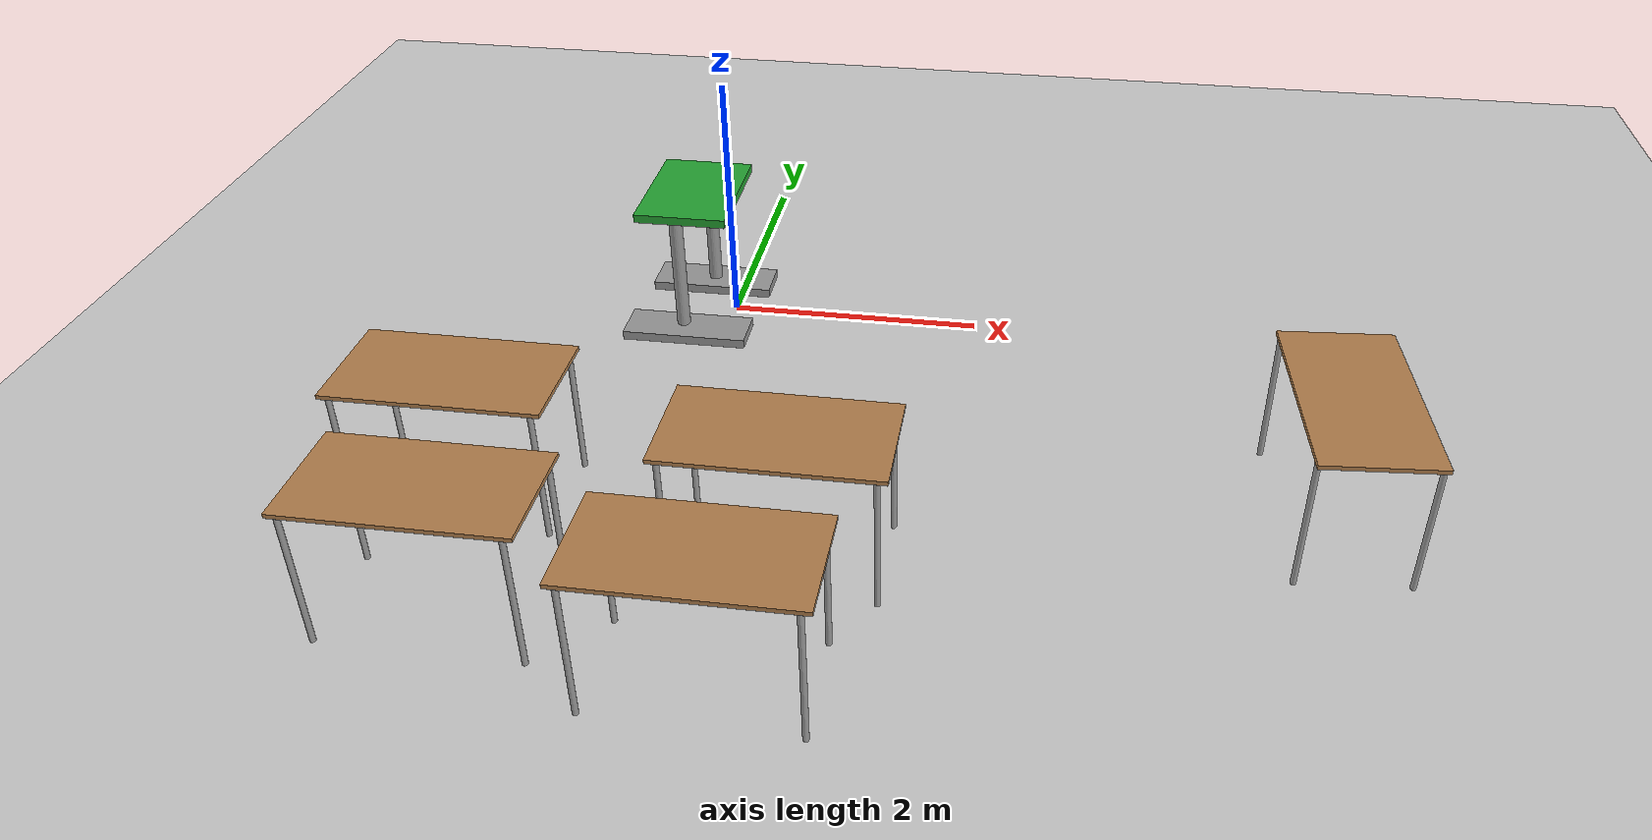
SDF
<sdf version="1.6">
 <world name="default">
  <model name="ground_plane">
   <static>1</static>
   <link name="link">
    <collision name="collision">
     <geometry><plane><normal>0 0 1</normal><size>100 100</size></plane></geometry>
     <surface>
      <contact><collide_bitmask>65535</collide_bitmask></contact>
      <friction><ode><mu>100</mu><mu2>50</mu2></ode></friction>
     </surface>
    </collision>
    <visual name="visual">
     <cast_shadows>0</cast_shadows>
     <geometry><plane><normal>0 0 1</normal><size>100 100</size></plane></geometry>
     <material>
      <script><uri>file://media/materials/scripts/gazebo.material</uri><name>Gazebo/Grey</name></script>
     </material>
    </visual>
   </link>
  </model>
  <model name="Humanoid_0">
   <link name="link_0">
    <pose>-0.00782 0.058578 0.612544 0 -0 0</pose>
    <inertial>
     <mass>0.0487032</mass>
     <inertia>
      <ixx>0.00407692</ixx>
      <ixy>0</ixy>
      <ixz>0</ixz>
      <iyy>0.00215077</iyy>
      <iyz>0</iyz>
      <izz>0.00619105</izz>
     </inertia>
    </inertial>
    <visual name="visual">
     <geometry><box><size>0.724854 1 0.067191</size></box></geometry>
     <material>
      <lighting>1</lighting>
      <script><uri>file://media/materials/scripts/gazebo.material</uri><name>Gazebo/Green</name></script>
      <shader type="pixel"/>
      <ambient>0 1 0 1</ambient>
      <diffuse>0 1 0 1</diffuse>
      <specular>0 1 0 1</specular>
      <emissive>0 1 0 1</emissive>
     </material>
    </visual>
    <collision name="collision">
     <geometry><box><size>0.724854 1 0.067191</size></box></geometry>
     <surface>
      <friction>
       <ode><mu>1</mu><mu2>1</mu2><fdir1>0 0 0</fdir1><slip1>0</slip1><slip2>0</slip2></ode>
       <torsional>
        <coefficient>1</coefficient>
        <patch_radius>0</patch_radius>
        <surface_radius>0</surface_radius>
        <use_patch_radius>1</use_patch_radius>
        <ode><slip>0</slip></ode>
       </torsional>
      </friction>
      <bounce><restitution_coefficient>0</restitution_coefficient><threshold>1e+06</threshold></bounce>
      <contact>
       <collide_without_contact>0</collide_without_contact>
       <collide_without_contact_bitmask>1</collide_without_contact_bitmask>
       <collide_bitmask>1</collide_bitmask>
       <ode>
        <soft_cfm>0</soft_cfm>
        <soft_erp>0.2</soft_erp>
        <kp>1e+13</kp>
        <kd>1</kd>
        <max_vel>0.01</max_vel>
        <min_depth>0</min_depth>
       </ode>
       <bullet>
        <split_impulse>1</split_impulse>
        <split_impulse_penetration_threshold>-0.01</split_impulse_penetration_threshold>
        <soft_cfm>0</soft_cfm>
        <soft_erp>0.2</soft_erp>
        <kp>1e+13</kp>
        <kd>1</kd>
       </bullet>
      </contact>
     </surface>
    </collision>
   </link>
   <link name="link_1">
    <pose>-0.00782 -0.422569 -0.385222 0 -0 0</pose>
    <inertial>
     <mass>0.0249491</mass>
     <inertia>
      <ixx>0.00026268</ixx>
      <ixy>0</ixy>
      <ixz>0</ixz>
      <iyy>0.00208977</iyy>
      <iyz>0</iyz>
      <izz>0.00233109</izz>
     </inertia>
    </inertial>
    <visual name="visual">
     <geometry><box><size>1 0.348151 0.071658</size></box></geometry>
     <material>
      <lighting>1</lighting>
      <script><uri>file://media/materials/scripts/gazebo.material</uri><name>Gazebo/Grey</name></script>
      <shader type="pixel"/>
      <ambient>0.3 0.3 0.3 1</ambient>
      <diffuse>0.7 0.7 0.7 1</diffuse>
      <specular>0.01 0.01 0.01 1</specular>
      <emissive>0 0 0 1</emissive>
     </material>
    </visual>
    <collision name="collision">
     <geometry><box><size>1 0.348151 0.071658</size></box></geometry>
     <surface>
      <friction>
       <ode><mu>1</mu><mu2>1</mu2><fdir1>0 0 0</fdir1><slip1>0</slip1><slip2>0</slip2></ode>
       <torsional>
        <coefficient>1</coefficient>
        <patch_radius>0</patch_radius>
        <surface_radius>0</surface_radius>
        <use_patch_radius>1</use_patch_radius>
        <ode><slip>0</slip></ode>
       </torsional>
      </friction>
      <bounce><restitution_coefficient>0</restitution_coefficient><threshold>1e+06</threshold></bounce>
      <contact>
       <collide_without_contact>0</collide_without_contact>
       <collide_without_contact_bitmask>1</collide_without_contact_bitmask>
       <collide_bitmask>1</collide_bitmask>
       <ode>
        <soft_cfm>0</soft_cfm>
        <soft_erp>0.2</soft_erp>
        <kp>1e+13</kp>
        <kd>1</kd>
        <max_vel>0.01</max_vel>
        <min_depth>0</min_depth>
       </ode>
       <bullet>
        <split_impulse>1</split_impulse>
        <split_impulse_penetration_threshold>-0.01</split_impulse_penetration_threshold>
        <soft_cfm>0</soft_cfm>
        <soft_erp>0.2</soft_erp>
        <kp>1e+13</kp>
        <kd>1</kd>
       </bullet>
      </contact>
     </surface>
    </collision>
   </link>
   <link name="link_1_clone">
    <pose>0.033496 0.376243 -0.385222 0 -0 0</pose>
    <inertial>
     <mass>0.0249491</mass>
     <inertia>
      <ixx>0.00026268</ixx>
      <ixy>0</ixy>
      <ixz>0</ixz>
      <iyy>0.00208977</iyy>
      <iyz>0</iyz>
      <izz>0.00233109</izz>
     </inertia>
    </inertial>
    <visual name="visual">
     <geometry><box><size>1 0.348151 0.071658</size></box></geometry>
     <material>
      <lighting>1</lighting>
      <script><uri>file://media/materials/scripts/gazebo.material</uri><name>Gazebo/Grey</name></script>
      <shader type="pixel"/>
      <ambient>0.3 0.3 0.3 1</ambient>
      <diffuse>0.7 0.7 0.7 1</diffuse>
      <specular>0.01 0.01 0.01 1</specular>
      <emissive>0 0 0 1</emissive>
     </material>
    </visual>
    <collision name="collision">
     <geometry><box><size>1 0.348151 0.071658</size></box></geometry>
     <surface>
      <friction>
       <ode><mu>1</mu><mu2>1</mu2><fdir1>0 0 0</fdir1><slip1>0</slip1><slip2>0</slip2></ode>
       <torsional>
        <coefficient>1</coefficient>
        <patch_radius>0</patch_radius>
        <surface_radius>0</surface_radius>
        <use_patch_radius>1</use_patch_radius>
        <ode><slip>0</slip></ode>
       </torsional>
      </friction>
      <bounce><restitution_coefficient>0</restitution_coefficient><threshold>1e+06</threshold></bounce>
      <contact>
       <collide_without_contact>0</collide_without_contact>
       <collide_without_contact_bitmask>1</collide_without_contact_bitmask>
       <collide_bitmask>1</collide_bitmask>
       <ode>
        <soft_cfm>0</soft_cfm>
        <soft_erp>0.2</soft_erp>
        <kp>1e+13</kp>
        <kd>1</kd>
        <max_vel>0.01</max_vel>
        <min_depth>0</min_depth>
       </ode>
       <bullet>
        <split_impulse>1</split_impulse>
        <split_impulse_penetration_threshold>-0.01</split_impulse_penetration_threshold>
        <soft_cfm>0</soft_cfm>
        <soft_erp>0.2</soft_erp>
        <kp>1e+13</kp>
        <kd>1</kd>
       </bullet>
      </contact>
     </surface>
    </collision>
   </link>
   <link name="link_2">
    <pose>-0.051356 -0.388494 0.078949 0 -0 0</pose>
    <inertial>
     <mass>0.0112059</mass>
     <inertia>
      <ixx>0.000941673</ixx>
      <ixy>0</ixy>
      <ixz>0</ixz>
      <iyy>0.000941673</iyy>
      <iyz>0</iyz>
      <izz>1.56964e-05</izz>
     </inertia>
    </inertial>
    <visual name="visual">
     <geometry><cylinder><radius>0.0529288</radius><length>1</length></cylinder></geometry>
     <material>
      <lighting>1</lighting>
      <script><uri>file://media/materials/scripts/gazebo.material</uri><name>Gazebo/Grey</name></script>
      <shader type="pixel"/>
      <ambient>0.3 0.3 0.3 1</ambient>
      <diffuse>0.7 0.7 0.7 1</diffuse>
      <specular>0.01 0.01 0.01 1</specular>
      <emissive>0 0 0 1</emissive>
     </material>
    </visual>
    <collision name="collision">
     <geometry><cylinder><radius>0.052929</radius><length>1</length></cylinder></geometry>
     <surface>
      <friction>
       <ode><mu>1</mu><mu2>1</mu2><fdir1>0 0 0</fdir1><slip1>0</slip1><slip2>0</slip2></ode>
       <torsional>
        <coefficient>1</coefficient>
        <patch_radius>0</patch_radius>
        <surface_radius>0</surface_radius>
        <use_patch_radius>1</use_patch_radius>
        <ode><slip>0</slip></ode>
       </torsional>
      </friction>
      <bounce><restitution_coefficient>0</restitution_coefficient><threshold>1e+06</threshold></bounce>
      <contact>
       <collide_without_contact>0</collide_without_contact>
       <collide_without_contact_bitmask>1</collide_without_contact_bitmask>
       <collide_bitmask>1</collide_bitmask>
       <ode>
        <soft_cfm>0</soft_cfm>
        <soft_erp>0.2</soft_erp>
        <kp>1e+13</kp>
        <kd>1</kd>
        <max_vel>0.01</max_vel>
        <min_depth>0</min_depth>
       </ode>
       <bullet>
        <split_impulse>1</split_impulse>
        <split_impulse_penetration_threshold>-0.01</split_impulse_penetration_threshold>
        <soft_cfm>0</soft_cfm>
        <soft_erp>0.2</soft_erp>
        <kp>1e+13</kp>
        <kd>1</kd>
       </bullet>
      </contact>
     </surface>
    </collision>
   </link>
   <link name="link_2_clone">
    <pose>0.033496 0.376243 0.078949 0 -0 0</pose>
    <inertial>
     <mass>0.0112059</mass>
     <inertia>
      <ixx>0.000941673</ixx>
      <ixy>0</ixy>
      <ixz>0</ixz>
      <iyy>0.000941673</iyy>
      <iyz>0</iyz>
      <izz>1.56964e-05</izz>
     </inertia>
    </inertial>
    <visual name="visual">
     <geometry><cylinder><radius>0.0529288</radius><length>1</length></cylinder></geometry>
     <material>
      <lighting>1</lighting>
      <script><uri>file://media/materials/scripts/gazebo.material</uri><name>Gazebo/Grey</name></script>
      <shader type="pixel"/>
      <ambient>0.3 0.3 0.3 1</ambient>
      <diffuse>0.7 0.7 0.7 1</diffuse>
      <specular>0.01 0.01 0.01 1</specular>
      <emissive>0 0 0 1</emissive>
     </material>
    </visual>
    <collision name="collision">
     <geometry><cylinder><radius>0.052929</radius><length>1</length></cylinder></geometry>
     <surface>
      <friction>
       <ode><mu>1</mu><mu2>1</mu2><fdir1>0 0 0</fdir1><slip1>0</slip1><slip2>0</slip2></ode>
       <torsional>
        <coefficient>1</coefficient>
        <patch_radius>0</patch_radius>
        <surface_radius>0</surface_radius>
        <use_patch_radius>1</use_patch_radius>
        <ode><slip>0</slip></ode>
       </torsional>
      </friction>
      <bounce><restitution_coefficient>0</restitution_coefficient><threshold>1e+06</threshold></bounce>
      <contact>
       <collide_without_contact>0</collide_without_contact>
       <collide_without_contact_bitmask>1</collide_without_contact_bitmask>
       <collide_bitmask>1</collide_bitmask>
       <ode>
        <soft_cfm>0</soft_cfm>
        <soft_erp>0.2</soft_erp>
        <kp>1e+13</kp>
        <kd>1</kd>
        <max_vel>0.01</max_vel>
        <min_depth>0</min_depth>
       </ode>
       <bullet>
        <split_impulse>1</split_impulse>
        <split_impulse_penetration_threshold>-0.01</split_impulse_penetration_threshold>
        <soft_cfm>0</soft_cfm>
        <soft_erp>0.2</soft_erp>
        <kp>1e+13</kp>
        <kd>1</kd>
       </bullet>
      </contact>
     </surface>
    </collision>
   </link>
   <joint name="link_1_JOINT_0" type="fixed">
    <parent>link_1</parent>
    <child>link_2</child>
    <physics>
     <ode><limit><cfm>0</cfm><erp>0.2</erp></limit><suspension><cfm>0</cfm><erp>0.2</erp></suspension></ode>
    </physics>
   </joint>
   <joint name="link_1_clone_JOINT_1" type="fixed">
    <parent>link_1_clone</parent>
    <child>link_2_clone</child>
    <physics>
     <ode><limit><cfm>0</cfm><erp>0.2</erp></limit><suspension><cfm>0</cfm><erp>0.2</erp></suspension></ode>
    </physics>
   </joint>
   <joint name="link_2_JOINT_2" type="fixed">
    <parent>link_2</parent>
    <child>link_0</child>
    <physics>
     <ode><limit><cfm>0</cfm><erp>0.2</erp></limit><suspension><cfm>0</cfm><erp>0.2</erp></suspension></ode>
    </physics>
   </joint>
   <joint name="link_2_clone_JOINT_3" type="fixed">
    <parent>link_2_clone</parent>
    <child>link_0</child>
    <physics>
     <ode><limit><cfm>0</cfm><erp>0.2</erp></limit><suspension><cfm>0</cfm><erp>0.2</erp></suspension></ode>
    </physics>
   </joint>
   <static>0</static>
   <pose>-0.299532 -0.000994 0.421051 0 -0 0.0025</pose>
  </model>
  <model name="table_clone_1">
   <static>1</static>
   <link name="link">
    <collision name="surface">
     <pose>0 0 1 0 -0 0</pose>
     <geometry><box><size>1.5 0.8 0.03</size></box></geometry>
     <surface><friction><ode><mu>0.6</mu><mu2>0.6</mu2></ode></friction></surface>
    </collision>
    <visual name="visual1">
     <pose>0 0 1 0 -0 0</pose>
     <geometry><box><size>1.5 0.8 0.03</size></box></geometry>
     <material>
      <script><uri>file://media/materials/scripts/gazebo.material</uri><name>Gazebo/Wood</name></script>
     </material>
    </visual>
    <collision name="front_left_leg">
     <pose>0.68 0.38 0.5 0 -0 0</pose>
     <geometry><cylinder><radius>0.02</radius><length>1</length></cylinder></geometry>
    </collision>
    <visual name="front_left_leg">
     <pose>0.68 0.38 0.5 0 -0 0</pose>
     <geometry><cylinder><radius>0.02</radius><length>1</length></cylinder></geometry>
     <material>
      <script><uri>file://media/materials/scripts/gazebo.material</uri><name>Gazebo/Grey</name></script>
     </material>
    </visual>
    <collision name="front_right_leg">
     <pose>0.68 -0.38 0.5 0 -0 0</pose>
     <geometry><cylinder><radius>0.02</radius><length>1</length></cylinder></geometry>
    </collision>
    <visual name="front_right_leg">
     <pose>0.68 -0.38 0.5 0 -0 0</pose>
     <geometry><cylinder><radius>0.02</radius><length>1</length></cylinder></geometry>
     <material>
      <script><uri>file://media/materials/scripts/gazebo.material</uri><name>Gazebo/Grey</name></script>
     </material>
    </visual>
    <collision name="back_right_leg">
     <pose>-0.68 -0.38 0.5 0 -0 0</pose>
     <geometry><cylinder><radius>0.02</radius><length>1</length></cylinder></geometry>
    </collision>
    <visual name="back_right_leg">
     <pose>-0.68 -0.38 0.5 0 -0 0</pose>
     <geometry><cylinder><radius>0.02</radius><length>1</length></cylinder></geometry>
     <material>
      <script><uri>file://media/materials/scripts/gazebo.material</uri><name>Gazebo/Grey</name></script>
     </material>
    </visual>
    <collision name="back_left_leg">
     <pose>-0.68 0.38 0.5 0 -0 0</pose>
     <geometry><cylinder><radius>0.02</radius><length>1</length></cylinder></geometry>
    </collision>
    <visual name="back_left_leg">
     <pose>-0.68 0.38 0.5 0 -0 0</pose>
     <geometry><cylinder><radius>0.02</radius><length>1</length></cylinder></geometry>
     <material>
      <script><uri>file://media/materials/scripts/gazebo.material</uri><name>Gazebo/Grey</name></script>
     </material>
    </visual>
   </link>
   <pose>4.6346 -2.06577 0 0 0 -1.49381</pose>
  </model>
  <model name="table_clone_2">
   <static>1</static>
   <link name="link">
    <collision name="surface">
     <pose>0 0 1 0 -0 0</pose>
     <geometry><box><size>1.5 0.8 0.03</size></box></geometry>
     <surface><friction><ode><mu>0.6</mu><mu2>0.6</mu2></ode></friction></surface>
    </collision>
    <visual name="visual1">
     <pose>0 0 1 0 -0 0</pose>
     <geometry><box><size>1.5 0.8 0.03</size></box></geometry>
     <material>
      <script><uri>file://media/materials/scripts/gazebo.material</uri><name>Gazebo/Wood</name></script>
     </material>
    </visual>
    <collision name="front_left_leg">
     <pose>0.68 0.38 0.5 0 -0 0</pose>
     <geometry><cylinder><radius>0.02</radius><length>1</length></cylinder></geometry>
    </collision>
    <visual name="front_left_leg">
     <pose>0.68 0.38 0.5 0 -0 0</pose>
     <geometry><cylinder><radius>0.02</radius><length>1</length></cylinder></geometry>
     <material>
      <script><uri>file://media/materials/scripts/gazebo.material</uri><name>Gazebo/Grey</name></script>
     </material>
    </visual>
    <collision name="front_right_leg">
     <pose>0.68 -0.38 0.5 0 -0 0</pose>
     <geometry><cylinder><radius>0.02</radius><length>1</length></cylinder></geometry>
    </collision>
    <visual name="front_right_leg">
     <pose>0.68 -0.38 0.5 0 -0 0</pose>
     <geometry><cylinder><radius>0.02</radius><length>1</length></cylinder></geometry>
     <material>
      <script><uri>file://media/materials/scripts/gazebo.material</uri><name>Gazebo/Grey</name></script>
     </material>
    </visual>
    <collision name="back_right_leg">
     <pose>-0.68 -0.38 0.5 0 -0 0</pose>
     <geometry><cylinder><radius>0.02</radius><length>1</length></cylinder></geometry>
    </collision>
    <visual name="back_right_leg">
     <pose>-0.68 -0.38 0.5 0 -0 0</pose>
     <geometry><cylinder><radius>0.02</radius><length>1</length></cylinder></geometry>
     <material>
      <script><uri>file://media/materials/scripts/gazebo.material</uri><name>Gazebo/Grey</name></script>
     </material>
    </visual>
    <collision name="back_left_leg">
     <pose>-0.68 0.38 0.5 0 -0 0</pose>
     <geometry><cylinder><radius>0.02</radius><length>1</length></cylinder></geometry>
    </collision>
    <visual name="back_left_leg">
     <pose>-0.68 0.38 0.5 0 -0 0</pose>
     <geometry><cylinder><radius>0.02</radius><length>1</length></cylinder></geometry>
     <material>
      <script><uri>file://media/materials/scripts/gazebo.material</uri><name>Gazebo/Grey</name></script>
     </material>
    </visual>
   </link>
   <pose>-1.27558 -2.623 0 0 -0 0</pose>
  </model>
  <model name="table_clone_3">
   <static>1</static>
   <link name="link">
    <collision name="surface">
     <pose>0 0 1 0 -0 0</pose>
     <geometry><box><size>1.5 0.8 0.03</size></box></geometry>
     <surface><friction><ode><mu>0.6</mu><mu2>0.6</mu2></ode></friction></surface>
    </collision>
    <visual name="visual1">
     <pose>0 0 1 0 -0 0</pose>
     <geometry><box><size>1.5 0.8 0.03</size></box></geometry>
     <material>
      <script><uri>file://media/materials/scripts/gazebo.material</uri><name>Gazebo/Wood</name></script>
     </material>
    </visual>
    <collision name="front_left_leg">
     <pose>0.68 0.38 0.5 0 -0 0</pose>
     <geometry><cylinder><radius>0.02</radius><length>1</length></cylinder></geometry>
    </collision>
    <visual name="front_left_leg">
     <pose>0.68 0.38 0.5 0 -0 0</pose>
     <geometry><cylinder><radius>0.02</radius><length>1</length></cylinder></geometry>
     <material>
      <script><uri>file://media/materials/scripts/gazebo.material</uri><name>Gazebo/Grey</name></script>
     </material>
    </visual>
    <collision name="front_right_leg">
     <pose>0.68 -0.38 0.5 0 -0 0</pose>
     <geometry><cylinder><radius>0.02</radius><length>1</length></cylinder></geometry>
    </collision>
    <visual name="front_right_leg">
     <pose>0.68 -0.38 0.5 0 -0 0</pose>
     <geometry><cylinder><radius>0.02</radius><length>1</length></cylinder></geometry>
     <material>
      <script><uri>file://media/materials/scripts/gazebo.material</uri><name>Gazebo/Grey</name></script>
     </material>
    </visual>
    <collision name="back_right_leg">
     <pose>-0.68 -0.38 0.5 0 -0 0</pose>
     <geometry><cylinder><radius>0.02</radius><length>1</length></cylinder></geometry>
    </collision>
    <visual name="back_right_leg">
     <pose>-0.68 -0.38 0.5 0 -0 0</pose>
     <geometry><cylinder><radius>0.02</radius><length>1</length></cylinder></geometry>
     <material>
      <script><uri>file://media/materials/scripts/gazebo.material</uri><name>Gazebo/Grey</name></script>
     </material>
    </visual>
    <collision name="back_left_leg">
     <pose>-0.68 0.38 0.5 0 -0 0</pose>
     <geometry><cylinder><radius>0.02</radius><length>1</length></cylinder></geometry>
    </collision>
    <visual name="back_left_leg">
     <pose>-0.68 0.38 0.5 0 -0 0</pose>
     <geometry><cylinder><radius>0.02</radius><length>1</length></cylinder></geometry>
     <material>
      <script><uri>file://media/materials/scripts/gazebo.material</uri><name>Gazebo/Grey</name></script>
     </material>
    </visual>
   </link>
   <pose>-1.02375 -3.77675 0 0 -0 0</pose>
  </model>
  <model name="table_clone_4">
   <static>1</static>
   <link name="link">
    <collision name="surface">
     <pose>0 0 1 0 -0 0</pose>
     <geometry><box><size>1.5 0.8 0.03</size></box></geometry>
     <surface><friction><ode><mu>0.6</mu><mu2>0.6</mu2></ode></friction></surface>
    </collision>
    <visual name="visual1">
     <pose>0 0 1 0 -0 0</pose>
     <geometry><box><size>1.5 0.8 0.03</size></box></geometry>
     <material>
      <script><uri>file://media/materials/scripts/gazebo.material</uri><name>Gazebo/Wood</name></script>
     </material>
    </visual>
    <collision name="front_left_leg">
     <pose>0.68 0.38 0.5 0 -0 0</pose>
     <geometry><cylinder><radius>0.02</radius><length>1</length></cylinder></geometry>
    </collision>
    <visual name="front_left_leg">
     <pose>0.68 0.38 0.5 0 -0 0</pose>
     <geometry><cylinder><radius>0.02</radius><length>1</length></cylinder></geometry>
     <material>
      <script><uri>file://media/materials/scripts/gazebo.material</uri><name>Gazebo/Grey</name></script>
     </material>
    </visual>
    <collision name="front_right_leg">
     <pose>0.68 -0.38 0.5 0 -0 0</pose>
     <geometry><cylinder><radius>0.02</radius><length>1</length></cylinder></geometry>
    </collision>
    <visual name="front_right_leg">
     <pose>0.68 -0.38 0.5 0 -0 0</pose>
     <geometry><cylinder><radius>0.02</radius><length>1</length></cylinder></geometry>
     <material>
      <script><uri>file://media/materials/scripts/gazebo.material</uri><name>Gazebo/Grey</name></script>
     </material>
    </visual>
    <collision name="back_right_leg">
     <pose>-0.68 -0.38 0.5 0 -0 0</pose>
     <geometry><cylinder><radius>0.02</radius><length>1</length></cylinder></geometry>
    </collision>
    <visual name="back_right_leg">
     <pose>-0.68 -0.38 0.5 0 -0 0</pose>
     <geometry><cylinder><radius>0.02</radius><length>1</length></cylinder></geometry>
     <material>
      <script><uri>file://media/materials/scripts/gazebo.material</uri><name>Gazebo/Grey</name></script>
     </material>
    </visual>
    <collision name="back_left_leg">
     <pose>-0.68 0.38 0.5 0 -0 0</pose>
     <geometry><cylinder><radius>0.02</radius><length>1</length></cylinder></geometry>
    </collision>
    <visual name="back_left_leg">
     <pose>-0.68 0.38 0.5 0 -0 0</pose>
     <geometry><cylinder><radius>0.02</radius><length>1</length></cylinder></geometry>
     <material>
      <script><uri>file://media/materials/scripts/gazebo.material</uri><name>Gazebo/Grey</name></script>
     </material>
    </visual>
   </link>
   <pose>1.00571 -2.9726 0 0 -0 0</pose>
  </model>
  <model name="table_clone_5">
   <static>1</static>
   <link name="link">
    <collision name="surface">
     <pose>0 0 1 0 -0 0</pose>
     <geometry><box><size>1.5 0.8 0.03</size></box></geometry>
     <surface><friction><ode><mu>0.6</mu><mu2>0.6</mu2></ode></friction></surface>
    </collision>
    <visual name="visual1">
     <pose>0 0 1 0 -0 0</pose>
     <geometry><box><size>1.5 0.8 0.03</size></box></geometry>
     <material>
      <script><uri>file://media/materials/scripts/gazebo.material</uri><name>Gazebo/Wood</name></script>
     </material>
    </visual>
    <collision name="front_left_leg">
     <pose>0.68 0.38 0.5 0 -0 0</pose>
     <geometry><cylinder><radius>0.02</radius><length>1</length></cylinder></geometry>
    </collision>
    <visual name="front_left_leg">
     <pose>0.68 0.38 0.5 0 -0 0</pose>
     <geometry><cylinder><radius>0.02</radius><length>1</length></cylinder></geometry>
     <material>
      <script><uri>file://media/materials/scripts/gazebo.material</uri><name>Gazebo/Grey</name></script>
     </material>
    </visual>
    <collision name="front_right_leg">
     <pose>0.68 -0.38 0.5 0 -0 0</pose>
     <geometry><cylinder><radius>0.02</radius><length>1</length></cylinder></geometry>
    </collision>
    <visual name="front_right_leg">
     <pose>0.68 -0.38 0.5 0 -0 0</pose>
     <geometry><cylinder><radius>0.02</radius><length>1</length></cylinder></geometry>
     <material>
      <script><uri>file://media/materials/scripts/gazebo.material</uri><name>Gazebo/Grey</name></script>
     </material>
    </visual>
    <collision name="back_right_leg">
     <pose>-0.68 -0.38 0.5 0 -0 0</pose>
     <geometry><cylinder><radius>0.02</radius><length>1</length></cylinder></geometry>
    </collision>
    <visual name="back_right_leg">
     <pose>-0.68 -0.38 0.5 0 -0 0</pose>
     <geometry><cylinder><radius>0.02</radius><length>1</length></cylinder></geometry>
     <material>
      <script><uri>file://media/materials/scripts/gazebo.material</uri><name>Gazebo/Grey</name></script>
     </material>
    </visual>
    <collision name="back_left_leg">
     <pose>-0.68 0.38 0.5 0 -0 0</pose>
     <geometry><cylinder><radius>0.02</radius><length>1</length></cylinder></geometry>
    </collision>
    <visual name="back_left_leg">
     <pose>-0.68 0.38 0.5 0 -0 0</pose>
     <geometry><cylinder><radius>0.02</radius><length>1</length></cylinder></geometry>
     <material>
      <script><uri>file://media/materials/scripts/gazebo.material</uri><name>Gazebo/Grey</name></script>
     </material>
    </visual>
   </link>
   <pose>0.761125 -4.11041 0 0 -0 0</pose>
  </model>
 </world>
</sdf>
